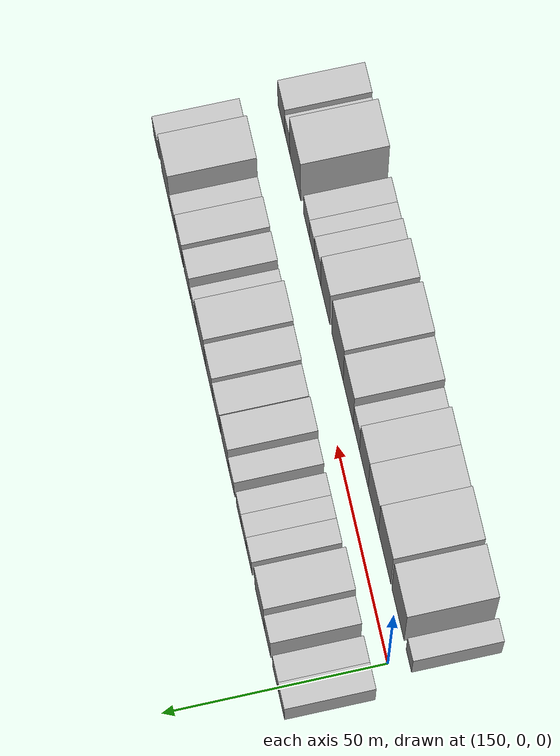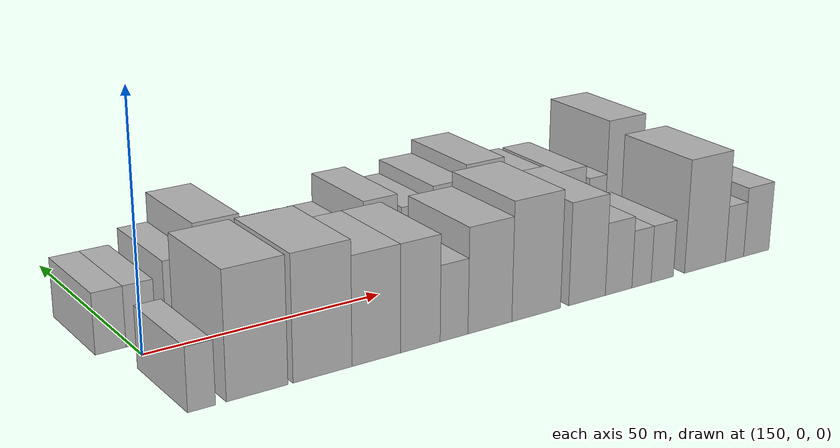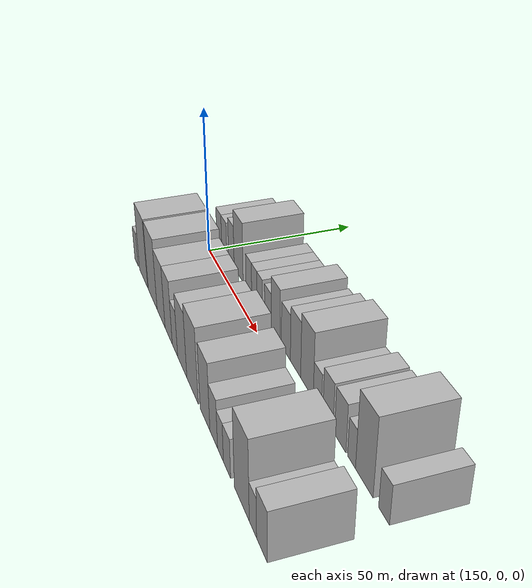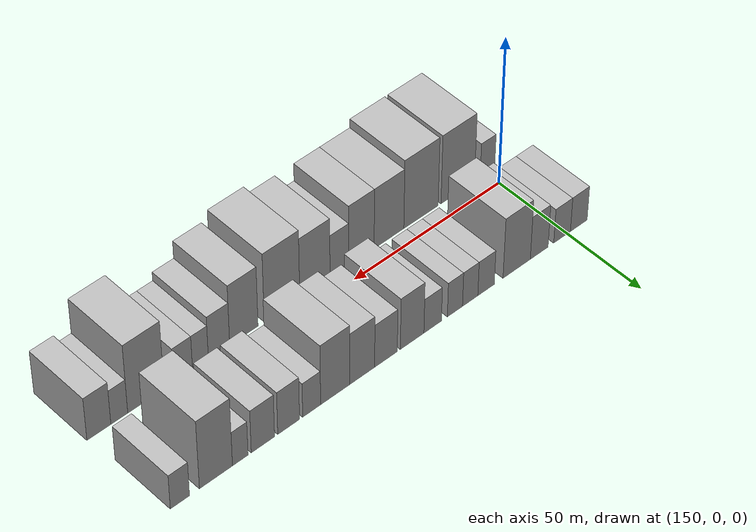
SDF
<sdf version="1.6">
 <world name="default">
  <model name="building_15">
   <static>1</static>
   <pose>145.9293 14.5000 0 0.000000 0.000000 1.570796</pose>
   <link name="link">
    <pose>0 0 6.00 0 0 0</pose>
    <collision name="collision"><geometry><box><size>20.0000 5.9774 12.0000</size></box></geometry></collision>
    <visual name="visual">
     <cast_shadows>0</cast_shadows>
     <geometry><box><size>20.0000 5.9774 12.0000</size></box></geometry>
     <material>
      <script>
       <uri>model://HANNAS_wall/materials/scripts</uri>
       <uri>model://HANNAS_wall/materials/textures</uri>
       <name>vrc/HANNAS_wall</name>
      </script>
     </material>
    </visual>
   </link>
  </model>
  <model name="building_16">
   <static>1</static>
   <pose>151.8795 14.5000 0 0.000000 0.000000 1.570796</pose>
   <link name="link">
    <pose>0 0 6.00 0 0 0</pose>
    <collision name="collision"><geometry><box><size>20.0000 5.9230 12.0000</size></box></geometry></collision>
    <visual name="visual">
     <cast_shadows>0</cast_shadows>
     <geometry><box><size>20.0000 5.9230 12.0000</size></box></geometry>
     <material>
      <script>
       <uri>model://HANNAS_wall/materials/scripts</uri>
       <uri>model://HANNAS_wall/materials/textures</uri>
       <name>vrc/HANNAS_wall</name>
      </script>
     </material>
    </visual>
   </link>
  </model>
  <model name="building_17">
   <static>1</static>
   <pose>159.9639 14.5000 0 0.000000 0.000000 1.570796</pose>
   <link name="link">
    <pose>0 0 7.50 0 0 0</pose>
    <collision name="collision"><geometry><box><size>20.0000 6.2458 15.0000</size></box></geometry></collision>
    <visual name="visual">
     <cast_shadows>0</cast_shadows>
     <geometry><box><size>20.0000 6.2458 15.0000</size></box></geometry>
     <material>
      <script>
       <uri>model://HANNAS_wall/materials/scripts</uri>
       <uri>model://HANNAS_wall/materials/textures</uri>
       <name>vrc/HANNAS_wall</name>
      </script>
     </material>
    </visual>
   </link>
  </model>
  <model name="building_18">
   <static>1</static>
   <pose>167.8384 14.5000 0 0.000000 0.000000 1.570796</pose>
   <link name="link">
    <pose>0 0 10.50 0 0 0</pose>
    <collision name="collision"><geometry><box><size>20.0000 9.5033 21.0000</size></box></geometry></collision>
    <visual name="visual">
     <cast_shadows>0</cast_shadows>
     <geometry><box><size>20.0000 9.5033 21.0000</size></box></geometry>
     <material>
      <script>
       <uri>model://HANNAS_wall/materials/scripts</uri>
       <uri>model://HANNAS_wall/materials/textures</uri>
       <name>vrc/HANNAS_wall</name>
      </script>
     </material>
    </visual>
   </link>
  </model>
  <model name="building_19">
   <static>1</static>
   <pose>178.4240 14.5000 0 0.000000 0.000000 1.570796</pose>
   <link name="link">
    <pose>0 0 6.00 0 0 0</pose>
    <collision name="collision"><geometry><box><size>20.0000 5.6677 12.0000</size></box></geometry></collision>
    <visual name="visual">
     <cast_shadows>0</cast_shadows>
     <geometry><box><size>20.0000 5.6677 12.0000</size></box></geometry>
     <material>
      <script>
       <uri>model://HANNAS_wall/materials/scripts</uri>
       <uri>model://HANNAS_wall/materials/textures</uri>
       <name>vrc/HANNAS_wall</name>
      </script>
     </material>
    </visual>
   </link>
  </model>
  <model name="building_20">
   <static>1</static>
   <pose>183.8757 14.5000 0 0.000000 0.000000 1.570796</pose>
   <link name="link">
    <pose>0 0 6.00 0 0 0</pose>
    <collision name="collision"><geometry><box><size>20.0000 5.2357 12.0000</size></box></geometry></collision>
    <visual name="visual">
     <cast_shadows>0</cast_shadows>
     <geometry><box><size>20.0000 5.2357 12.0000</size></box></geometry>
     <material>
      <script>
       <uri>model://HANNAS_wall/materials/scripts</uri>
       <uri>model://HANNAS_wall/materials/textures</uri>
       <name>vrc/HANNAS_wall</name>
      </script>
     </material>
    </visual>
   </link>
  </model>
  <model name="building_21">
   <static>1</static>
   <pose>189.0594 14.5000 0 0.000000 0.000000 1.570796</pose>
   <link name="link">
    <pose>0 0 6.00 0 0 0</pose>
    <collision name="collision"><geometry><box><size>20.0000 5.1316 12.0000</size></box></geometry></collision>
    <visual name="visual">
     <cast_shadows>0</cast_shadows>
     <geometry><box><size>20.0000 5.1316 12.0000</size></box></geometry>
     <material>
      <script>
       <uri>model://HANNAS_wall/materials/scripts</uri>
       <uri>model://HANNAS_wall/materials/textures</uri>
       <name>vrc/HANNAS_wall</name>
      </script>
     </material>
    </visual>
   </link>
  </model>
  <model name="building_22">
   <static>1</static>
   <pose>196.5684 14.5000 0 0.000000 0.000000 1.570796</pose>
   <link name="link">
    <pose>0 0 6.00 0 0 0</pose>
    <collision name="collision"><geometry><box><size>20.0000 5.8866 12.0000</size></box></geometry></collision>
    <visual name="visual">
     <cast_shadows>0</cast_shadows>
     <geometry><box><size>20.0000 5.8866 12.0000</size></box></geometry>
     <material>
      <script>
       <uri>model://HANNAS_wall/materials/scripts</uri>
       <uri>model://HANNAS_wall/materials/textures</uri>
       <name>vrc/HANNAS_wall</name>
      </script>
     </material>
    </visual>
   </link>
  </model>
  <model name="building_23">
   <static>1</static>
   <pose>203.4384 14.5000 0 0.000000 0.000000 1.570796</pose>
   <link name="link">
    <pose>0 0 9.00 0 0 0</pose>
    <collision name="collision"><geometry><box><size>20.0000 7.8533 18.0000</size></box></geometry></collision>
    <visual name="visual">
     <cast_shadows>0</cast_shadows>
     <geometry><box><size>20.0000 7.8533 18.0000</size></box></geometry>
     <material>
      <script>
       <uri>model://HANNAS_wall/materials/scripts</uri>
       <uri>model://HANNAS_wall/materials/textures</uri>
       <name>vrc/HANNAS_wall</name>
      </script>
     </material>
    </visual>
   </link>
  </model>
  <model name="building_24">
   <static>1</static>
   <pose>212.0950 14.5000 0 0.000000 0.000000 1.570796</pose>
   <link name="link">
    <pose>0 0 7.50 0 0 0</pose>
    <collision name="collision"><geometry><box><size>20.0000 7.4600 15.0000</size></box></geometry></collision>
    <visual name="visual">
     <cast_shadows>0</cast_shadows>
     <geometry><box><size>20.0000 7.4600 15.0000</size></box></geometry>
     <material>
      <script>
       <uri>model://HANNAS_wall/materials/scripts</uri>
       <uri>model://HANNAS_wall/materials/textures</uri>
       <name>vrc/HANNAS_wall</name>
      </script>
     </material>
    </visual>
   </link>
  </model>
  <model name="building_25">
   <static>1</static>
   <pose>219.8678 14.5000 0 0.000000 0.000000 1.570796</pose>
   <link name="link">
    <pose>0 0 9.00 0 0 0</pose>
    <collision name="collision"><geometry><box><size>20.0000 8.0856 18.0000</size></box></geometry></collision>
    <visual name="visual">
     <cast_shadows>0</cast_shadows>
     <geometry><box><size>20.0000 8.0856 18.0000</size></box></geometry>
     <material>
      <script>
       <uri>model://HANNAS_wall/materials/scripts</uri>
       <uri>model://HANNAS_wall/materials/textures</uri>
       <name>vrc/HANNAS_wall</name>
      </script>
     </material>
    </visual>
   </link>
  </model>
  <model name="building_26">
   <static>1</static>
   <pose>228.6198 14.5000 0 0.000000 0.000000 1.570796</pose>
   <link name="link">
    <pose>0 0 10.50 0 0 0</pose>
    <collision name="collision"><geometry><box><size>20.0000 9.4183 21.0000</size></box></geometry></collision>
    <visual name="visual">
     <cast_shadows>0</cast_shadows>
     <geometry><box><size>20.0000 9.4183 21.0000</size></box></geometry>
     <material>
      <script>
       <uri>model://HANNAS_wall/materials/scripts</uri>
       <uri>model://HANNAS_wall/materials/textures</uri>
       <name>vrc/HANNAS_wall</name>
      </script>
     </material>
    </visual>
   </link>
  </model>
  <model name="building_27">
   <static>1</static>
   <pose>236.1956 14.5000 0 0.000000 0.000000 1.570796</pose>
   <link name="link">
    <pose>0 0 6.00 0 0 0</pose>
    <collision name="collision"><geometry><box><size>20.0000 5.7333 12.0000</size></box></geometry></collision>
    <visual name="visual">
     <cast_shadows>0</cast_shadows>
     <geometry><box><size>20.0000 5.7333 12.0000</size></box></geometry>
     <material>
      <script>
       <uri>model://HANNAS_wall/materials/scripts</uri>
       <uri>model://HANNAS_wall/materials/textures</uri>
       <name>vrc/HANNAS_wall</name>
      </script>
     </material>
    </visual>
   </link>
  </model>
  <model name="building_28">
   <static>1</static>
   <pose>243.5066 14.5000 0 0.000000 0.000000 1.570796</pose>
   <link name="link">
    <pose>0 0 7.50 0 0 0</pose>
    <collision name="collision"><geometry><box><size>20.0000 6.8887 15.0000</size></box></geometry></collision>
    <visual name="visual">
     <cast_shadows>0</cast_shadows>
     <geometry><box><size>20.0000 6.8887 15.0000</size></box></geometry>
     <material>
      <script>
       <uri>model://HANNAS_wall/materials/scripts</uri>
       <uri>model://HANNAS_wall/materials/textures</uri>
       <name>vrc/HANNAS_wall</name>
      </script>
     </material>
    </visual>
   </link>
  </model>
  <model name="building_29">
   <static>1</static>
   <pose>251.5975 14.5000 0 0.000000 0.000000 1.570796</pose>
   <link name="link">
    <pose>0 0 7.50 0 0 0</pose>
    <collision name="collision"><geometry><box><size>20.0000 7.2932 15.0000</size></box></geometry></collision>
    <visual name="visual">
     <cast_shadows>0</cast_shadows>
     <geometry><box><size>20.0000 7.2932 15.0000</size></box></geometry>
     <material>
      <script>
       <uri>model://HANNAS_wall/materials/scripts</uri>
       <uri>model://HANNAS_wall/materials/textures</uri>
       <name>vrc/HANNAS_wall</name>
      </script>
     </material>
    </visual>
   </link>
  </model>
  <model name="building_30">
   <static>1</static>
   <pose>258.6522 14.5000 0 0.000000 0.000000 1.570796</pose>
   <link name="link">
    <pose>0 0 6.00 0 0 0</pose>
    <collision name="collision"><geometry><box><size>20.0000 4.8161 12.0000</size></box></geometry></collision>
    <visual name="visual">
     <cast_shadows>0</cast_shadows>
     <geometry><box><size>20.0000 4.8161 12.0000</size></box></geometry>
     <material>
      <script>
       <uri>model://HANNAS_wall/materials/scripts</uri>
       <uri>model://HANNAS_wall/materials/textures</uri>
       <name>vrc/HANNAS_wall</name>
      </script>
     </material>
    </visual>
   </link>
  </model>
  <model name="building_31">
   <static>1</static>
   <pose>266.1332 14.5000 0 0.000000 0.000000 1.570796</pose>
   <link name="link">
    <pose>0 0 12.00 0 0 0</pose>
    <collision name="collision"><geometry><box><size>20.0000 10.1458 24.0000</size></box></geometry></collision>
    <visual name="visual">
     <cast_shadows>0</cast_shadows>
     <geometry><box><size>20.0000 10.1458 24.0000</size></box></geometry>
     <material>
      <script>
       <uri>model://HANNAS_wall/materials/scripts</uri>
       <uri>model://HANNAS_wall/materials/textures</uri>
       <name>vrc/HANNAS_wall</name>
      </script>
     </material>
    </visual>
   </link>
  </model>
  <model name="building_32">
   <static>1</static>
   <pose>277.1185 14.5000 0 0.000000 0.000000 1.570796</pose>
   <link name="link">
    <pose>0 0 6.00 0 0 0</pose>
    <collision name="collision"><geometry><box><size>20.0000 5.8248 12.0000</size></box></geometry></collision>
    <visual name="visual">
     <cast_shadows>0</cast_shadows>
     <geometry><box><size>20.0000 5.8248 12.0000</size></box></geometry>
     <material>
      <script>
       <uri>model://HANNAS_wall/materials/scripts</uri>
       <uri>model://HANNAS_wall/materials/textures</uri>
       <name>vrc/HANNAS_wall</name>
      </script>
     </material>
    </visual>
   </link>
  </model>
  <model name="building_49">
   <static>1</static>
   <pose>149.6583 -14.5000 0 0.000000 0.000000 1.570796</pose>
   <link name="link">
    <pose>0 0 6.00 0 0 0</pose>
    <collision name="collision"><geometry><box><size>20.0000 5.1701 12.0000</size></box></geometry></collision>
    <visual name="visual">
     <cast_shadows>0</cast_shadows>
     <geometry><box><size>20.0000 5.1701 12.0000</size></box></geometry>
     <material>
      <script>
       <uri>model://HANNAS_wall/materials/scripts</uri>
       <uri>model://HANNAS_wall/materials/textures</uri>
       <name>vrc/HANNAS_wall</name>
      </script>
     </material>
    </visual>
   </link>
  </model>
  <model name="building_50">
   <static>1</static>
   <pose>160.1552 -14.5000 0 0.000000 0.000000 1.570796</pose>
   <link name="link">
    <pose>0 0 12.00 0 0 0</pose>
    <collision name="collision"><geometry><box><size>20.0000 11.8237 24.0000</size></box></geometry></collision>
    <visual name="visual">
     <cast_shadows>0</cast_shadows>
     <geometry><box><size>20.0000 11.8237 24.0000</size></box></geometry>
     <material>
      <script>
       <uri>model://HANNAS_wall/materials/scripts</uri>
       <uri>model://HANNAS_wall/materials/textures</uri>
       <name>vrc/HANNAS_wall</name>
      </script>
     </material>
    </visual>
   </link>
  </model>
  <model name="building_51">
   <static>1</static>
   <pose>173.0118 -14.5000 0 0.000000 0.000000 1.570796</pose>
   <link name="link">
    <pose>0 0 12.00 0 0 0</pose>
    <collision name="collision"><geometry><box><size>20.0000 11.8895 24.0000</size></box></geometry></collision>
    <visual name="visual">
     <cast_shadows>0</cast_shadows>
     <geometry><box><size>20.0000 11.8895 24.0000</size></box></geometry>
     <material>
      <script>
       <uri>model://HANNAS_wall/materials/scripts</uri>
       <uri>model://HANNAS_wall/materials/textures</uri>
       <name>vrc/HANNAS_wall</name>
      </script>
     </material>
    </visual>
   </link>
  </model>
  <model name="building_52">
   <static>1</static>
   <pose>184.0375 -14.5000 0 0.000000 0.000000 1.570796</pose>
   <link name="link">
    <pose>0 0 10.50 0 0 0</pose>
    <collision name="collision"><geometry><box><size>20.0000 10.1620 21.0000</size></box></geometry></collision>
    <visual name="visual">
     <cast_shadows>0</cast_shadows>
     <geometry><box><size>20.0000 10.1620 21.0000</size></box></geometry>
     <material>
      <script>
       <uri>model://HANNAS_wall/materials/scripts</uri>
       <uri>model://HANNAS_wall/materials/textures</uri>
       <name>vrc/HANNAS_wall</name>
      </script>
     </material>
    </visual>
   </link>
  </model>
  <model name="building_53">
   <static>1</static>
   <pose>193.4255 -14.5000 0 0.000000 0.000000 1.570796</pose>
   <link name="link">
    <pose>0 0 10.50 0 0 0</pose>
    <collision name="collision"><geometry><box><size>20.0000 8.6140 21.0000</size></box></geometry></collision>
    <visual name="visual">
     <cast_shadows>0</cast_shadows>
     <geometry><box><size>20.0000 8.6140 21.0000</size></box></geometry>
     <material>
      <script>
       <uri>model://HANNAS_wall/materials/scripts</uri>
       <uri>model://HANNAS_wall/materials/textures</uri>
       <name>vrc/HANNAS_wall</name>
      </script>
     </material>
    </visual>
   </link>
  </model>
  <model name="building_54">
   <static>1</static>
   <pose>200.8437 -14.5000 0 0.000000 0.000000 1.570796</pose>
   <link name="link">
    <pose>0 0 7.50 0 0 0</pose>
    <collision name="collision"><geometry><box><size>20.0000 6.2224 15.0000</size></box></geometry></collision>
    <visual name="visual">
     <cast_shadows>0</cast_shadows>
     <geometry><box><size>20.0000 6.2224 15.0000</size></box></geometry>
     <material>
      <script>
       <uri>model://HANNAS_wall/materials/scripts</uri>
       <uri>model://HANNAS_wall/materials/textures</uri>
       <name>vrc/HANNAS_wall</name>
      </script>
     </material>
    </visual>
   </link>
  </model>
  <model name="building_55">
   <static>1</static>
   <pose>208.9846 -14.5000 0 0.000000 0.000000 1.570796</pose>
   <link name="link">
    <pose>0 0 10.50 0 0 0</pose>
    <collision name="collision"><geometry><box><size>20.0000 10.0593 21.0000</size></box></geometry></collision>
    <visual name="visual">
     <cast_shadows>0</cast_shadows>
     <geometry><box><size>20.0000 10.0593 21.0000</size></box></geometry>
     <material>
      <script>
       <uri>model://HANNAS_wall/materials/scripts</uri>
       <uri>model://HANNAS_wall/materials/textures</uri>
       <name>vrc/HANNAS_wall</name>
      </script>
     </material>
    </visual>
   </link>
  </model>
  <model name="building_56">
   <static>1</static>
   <pose>219.8255 -14.5000 0 0.000000 0.000000 1.570796</pose>
   <link name="link">
    <pose>0 0 12.00 0 0 0</pose>
    <collision name="collision"><geometry><box><size>20.0000 11.6225 24.0000</size></box></geometry></collision>
    <visual name="visual">
     <cast_shadows>0</cast_shadows>
     <geometry><box><size>20.0000 11.6225 24.0000</size></box></geometry>
     <material>
      <script>
       <uri>model://HANNAS_wall/materials/scripts</uri>
       <uri>model://HANNAS_wall/materials/textures</uri>
       <name>vrc/HANNAS_wall</name>
      </script>
     </material>
    </visual>
   </link>
  </model>
  <model name="building_57">
   <static>1</static>
   <pose>232.1982 -14.5000 0 0.000000 0.000000 1.570796</pose>
   <link name="link">
    <pose>0 0 10.50 0 0 0</pose>
    <collision name="collision"><geometry><box><size>20.0000 9.1229 21.0000</size></box></geometry></collision>
    <visual name="visual">
     <cast_shadows>0</cast_shadows>
     <geometry><box><size>20.0000 9.1229 21.0000</size></box></geometry>
     <material>
      <script>
       <uri>model://HANNAS_wall/materials/scripts</uri>
       <uri>model://HANNAS_wall/materials/textures</uri>
       <name>vrc/HANNAS_wall</name>
      </script>
     </material>
    </visual>
   </link>
  </model>
  <model name="building_58">
   <static>1</static>
   <pose>240.1542 -14.5000 0 0.000000 0.000000 1.570796</pose>
   <link name="link">
    <pose>0 0 7.50 0 0 0</pose>
    <collision name="collision"><geometry><box><size>20.0000 6.7891 15.0000</size></box></geometry></collision>
    <visual name="visual">
     <cast_shadows>0</cast_shadows>
     <geometry><box><size>20.0000 6.7891 15.0000</size></box></geometry>
     <material>
      <script>
       <uri>model://HANNAS_wall/materials/scripts</uri>
       <uri>model://HANNAS_wall/materials/textures</uri>
       <name>vrc/HANNAS_wall</name>
      </script>
     </material>
    </visual>
   </link>
  </model>
  <model name="building_59">
   <static>1</static>
   <pose>246.0574 -14.5000 0 0.000000 0.000000 1.570796</pose>
   <link name="link">
    <pose>0 0 6.00 0 0 0</pose>
    <collision name="collision"><geometry><box><size>20.0000 5.0175 12.0000</size></box></geometry></collision>
    <visual name="visual">
     <cast_shadows>0</cast_shadows>
     <geometry><box><size>20.0000 5.0175 12.0000</size></box></geometry>
     <material>
      <script>
       <uri>model://HANNAS_wall/materials/scripts</uri>
       <uri>model://HANNAS_wall/materials/textures</uri>
       <name>vrc/HANNAS_wall</name>
      </script>
     </material>
    </visual>
   </link>
  </model>
  <model name="building_60">
   <static>1</static>
   <pose>251.5301 -14.5000 0 0.000000 0.000000 1.570796</pose>
   <link name="link">
    <pose>0 0 6.00 0 0 0</pose>
    <collision name="collision"><geometry><box><size>20.0000 5.9278 12.0000</size></box></geometry></collision>
    <visual name="visual">
     <cast_shadows>0</cast_shadows>
     <geometry><box><size>20.0000 5.9278 12.0000</size></box></geometry>
     <material>
      <script>
       <uri>model://HANNAS_wall/materials/scripts</uri>
       <uri>model://HANNAS_wall/materials/textures</uri>
       <name>vrc/HANNAS_wall</name>
      </script>
     </material>
    </visual>
   </link>
  </model>
  <model name="building_61">
   <static>1</static>
   <pose>263.1207 -14.5000 0 0.000000 0.000000 1.570796</pose>
   <link name="link">
    <pose>0 0 12.00 0 0 0</pose>
    <collision name="collision"><geometry><box><size>20.0000 11.2536 24.0000</size></box></geometry></collision>
    <visual name="visual">
     <cast_shadows>0</cast_shadows>
     <geometry><box><size>20.0000 11.2536 24.0000</size></box></geometry>
     <material>
      <script>
       <uri>model://HANNAS_wall/materials/scripts</uri>
       <uri>model://HANNAS_wall/materials/textures</uri>
       <name>vrc/HANNAS_wall</name>
      </script>
     </material>
    </visual>
   </link>
  </model>
  <model name="building_62">
   <static>1</static>
   <pose>271.3280 -14.5000 0 0.000000 0.000000 1.570796</pose>
   <link name="link">
    <pose>0 0 6.00 0 0 0</pose>
    <collision name="collision"><geometry><box><size>20.0000 5.1610 12.0000</size></box></geometry></collision>
    <visual name="visual">
     <cast_shadows>0</cast_shadows>
     <geometry><box><size>20.0000 5.1610 12.0000</size></box></geometry>
     <material>
      <script>
       <uri>model://HANNAS_wall/materials/scripts</uri>
       <uri>model://HANNAS_wall/materials/textures</uri>
       <name>vrc/HANNAS_wall</name>
      </script>
     </material>
    </visual>
   </link>
  </model>
  <model name="building_63">
   <static>1</static>
   <pose>277.5551 -14.5000 0 0.000000 0.000000 1.570796</pose>
   <link name="link">
    <pose>0 0 7.50 0 0 0</pose>
    <collision name="collision"><geometry><box><size>20.0000 7.2932 15.0000</size></box></geometry></collision>
    <visual name="visual">
     <cast_shadows>0</cast_shadows>
     <geometry><box><size>20.0000 7.2932 15.0000</size></box></geometry>
     <material>
      <script>
       <uri>model://HANNAS_wall/materials/scripts</uri>
       <uri>model://HANNAS_wall/materials/textures</uri>
       <name>vrc/HANNAS_wall</name>
      </script>
     </material>
    </visual>
   </link>
  </model>
 </world>
</sdf>
